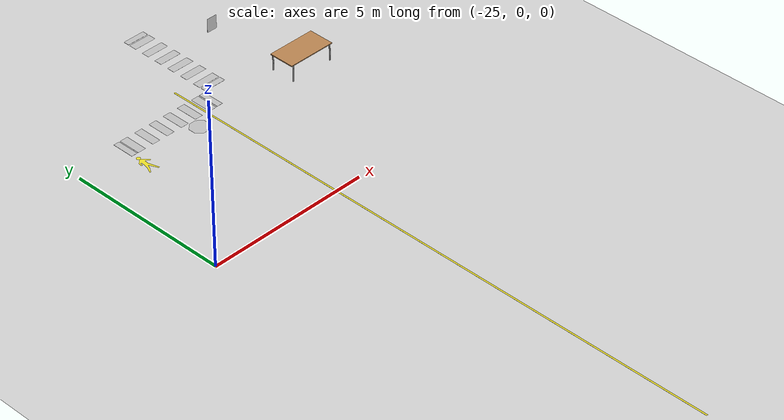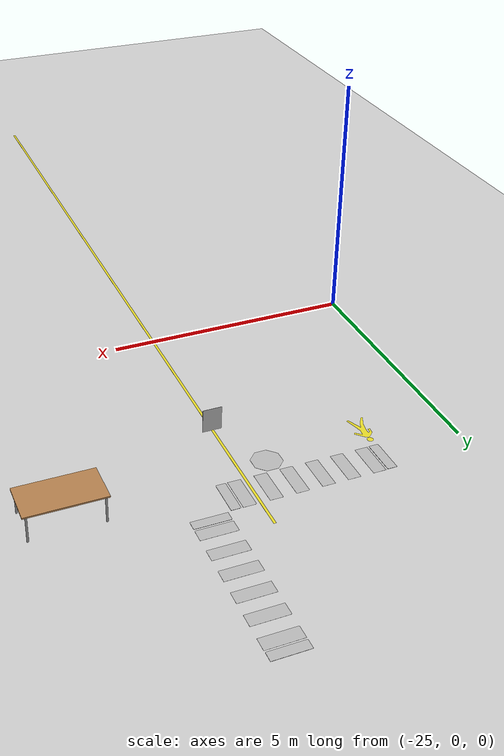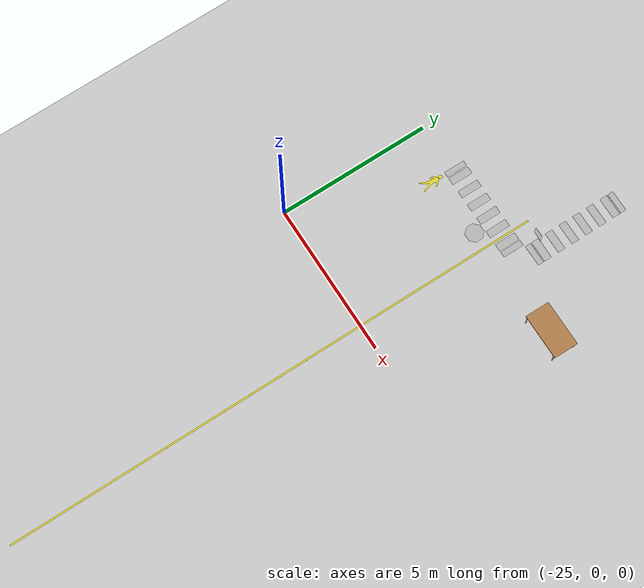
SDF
<sdf version="1.6">
 <world name="default">
  <model name="ground_plane">
   <static>1</static>
   <link name="link">
    <collision name="collision">
     <geometry><plane><normal>0 0 1</normal><size>100 100</size></plane></geometry>
     <surface><friction><ode><mu>100</mu><mu2>50</mu2></ode></friction></surface>
    </collision>
    <visual name="visual">
     <cast_shadows>0</cast_shadows>
     <geometry><plane><normal>0 0 1</normal><size>100 100</size></plane></geometry>
     <material>
      <script><uri>file://media/materials/scripts/gazebo.material</uri><name>Gazebo/Grey</name></script>
     </material>
    </visual>
   </link>
  </model>
  <model name="line18m">
   <link name="link_1">
    <inertial>
     <mass>1</mass>
     <inertia>
      <ixx>0.166667</ixx>
      <ixy>0</ixy>
      <ixz>0</ixz>
      <iyy>0.166667</iyy>
      <iyz>0</iyz>
      <izz>0.166667</izz>
     </inertia>
    </inertial>
    <visual name="visual">
     <geometry><box><size>0.05 18 0.001</size></box></geometry>
     <material>
      <lighting>1</lighting>
      <script><uri>file://media/materials/scripts/gazebo.material</uri><name>Gazebo/Yellow</name></script>
     </material>
    </visual>
   </link>
   <static>1</static>
   <pose>-20.8079 -2.99039 0 0 -0 0</pose>
  </model>
  <model name="crosswalk">
   <link name="link_0">
    <inertial>
     <mass>1</mass>
     <inertia>
      <ixx>0.166667</ixx>
      <ixy>0</ixy>
      <ixz>0</ixz>
      <iyy>0.166667</iyy>
      <iyz>0</iyz>
      <izz>0.166667</izz>
     </inertia>
    </inertial>
    <visual name="visual">
     <pose>0.25 0 0 0 -0 0</pose>
     <geometry><box><size>0.25 0.7 0.001</size></box></geometry>
     <material><lighting>1</lighting></material>
    </visual>
    <visual name="ModelPreview_0::link_0::visual_1">
     <pose>0.75 0 0 0 -0 0</pose>
     <geometry><box><size>0.25 0.7 0.001</size></box></geometry>
     <material><lighting>1</lighting></material>
    </visual>
    <visual name="ModelPreview_0::link_0::visual_2">
     <pose>1.25 0 0 0 -0 0</pose>
     <geometry><box><size>0.25 0.7 0.001</size></box></geometry>
     <material><lighting>1</lighting></material>
    </visual>
    <visual name="ModelPreview_0::link_0::visual_3">
     <pose>-0.25 0 0 0 -0 0</pose>
     <geometry><box><size>0.25 0.7 0.001</size></box></geometry>
     <material><lighting>1</lighting></material>
    </visual>
    <visual name="ModelPreview_0::link_0::visual_4">
     <pose>-0.75 0 0 0 -0 0</pose>
     <geometry><box><size>0.25 0.7 0.001</size></box></geometry>
     <material><lighting>1</lighting></material>
    </visual>
    <visual name="ModelPreview_0::link_0::visual_5">
     <pose>-1.25 0 0 0 -0 0</pose>
     <geometry><box><size>0.25 0.7 0.001</size></box></geometry>
     <material><lighting>1</lighting></material>
    </visual>
    <visual name="ModelPreview_0::link_0::visual_6">
     <pose>-1.6 0.35 0 -1.5708 -0 -1.5708</pose>
     <geometry>
      <mesh><uri>model://crosswalk/model/Warning+sign+confined+space/model.dae</uri><scale>2.35 2 0.9</scale></mesh>
     </geometry>
    </visual>
    <visual name="ModelPreview_0::link_0::visual_7">
     <pose>1.6 -0.35 0 -1.5708 0 1.5708</pose>
     <geometry>
      <mesh><uri>model://crosswalk/model/Warning+sign+confined+space/model.dae</uri><scale>2.35 2 0.9</scale></mesh>
     </geometry>
     <material><lighting>1</lighting></material>
    </visual>
   </link>
   <static>1</static>
   <pose>-21.85 5.10396 0 0 -0 0</pose>
  </model>
  <model name="crosswalk_2">
   <link name="link_0">
    <inertial>
     <mass>1</mass>
     <inertia>
      <ixx>0.166667</ixx>
      <ixy>0</ixy>
      <ixz>0</ixz>
      <iyy>0.166667</iyy>
      <iyz>0</iyz>
      <izz>0.166667</izz>
     </inertia>
    </inertial>
    <visual name="visual">
     <pose>0.25 0 0 0 -0 0</pose>
     <geometry><box><size>0.25 0.7 0.001</size></box></geometry>
     <material><lighting>1</lighting></material>
    </visual>
    <visual name="ModelPreview_0::link_0::visual_1">
     <pose>0.75 0 0 0 -0 0</pose>
     <geometry><box><size>0.25 0.7 0.001</size></box></geometry>
     <material><lighting>1</lighting></material>
    </visual>
    <visual name="ModelPreview_0::link_0::visual_2">
     <pose>1.25 0 0 0 -0 0</pose>
     <geometry><box><size>0.25 0.7 0.001</size></box></geometry>
     <material><lighting>1</lighting></material>
    </visual>
    <visual name="ModelPreview_0::link_0::visual_3">
     <pose>-0.25 0 0 0 -0 0</pose>
     <geometry><box><size>0.25 0.7 0.001</size></box></geometry>
     <material><lighting>1</lighting></material>
    </visual>
    <visual name="ModelPreview_0::link_0::visual_4">
     <pose>-0.75 0 0 0 -0 0</pose>
     <geometry><box><size>0.25 0.7 0.001</size></box></geometry>
     <material><lighting>1</lighting></material>
    </visual>
    <visual name="ModelPreview_0::link_0::visual_5">
     <pose>-1.25 0 0 0 -0 0</pose>
     <geometry><box><size>0.25 0.7 0.001</size></box></geometry>
     <material><lighting>1</lighting></material>
    </visual>
    <visual name="ModelPreview_0::link_0::visual_6">
     <pose>-1.6 0.35 0 -1.5708 -0 -1.5708</pose>
     <geometry>
      <mesh><uri>model://crosswalk/model/Warning+sign+confined+space/model.dae</uri><scale>2.35 2 0.9</scale></mesh>
     </geometry>
    </visual>
    <visual name="ModelPreview_0::link_0::visual_7">
     <pose>1.6 -0.35 0 -1.5708 0 1.5708</pose>
     <geometry>
      <mesh><uri>model://crosswalk/model/Warning+sign+confined+space/model.dae</uri><scale>2.35 2 0.9</scale></mesh>
     </geometry>
     <material><lighting>1</lighting></material>
    </visual>
   </link>
   <static>1</static>
   <pose>-19.84 7.07472 0 0 -0 1.5708</pose>
  </model>
  <model name="stopSign">
   <link name="link_0">
    <inertial>
     <mass>1</mass>
     <inertia><ixx>0.145833</ixx><ixy>0</ixy><ixz>0</ixz><iyy>0.145833</iyy><iyz>0</iyz><izz>0.125</izz></inertia>
    </inertial>
    <visual name="visual">
     <geometry><mesh><uri>model://stopSign/model/model.dae</uri><scale>1 1 0.1</scale></mesh></geometry>
     <material><lighting>1</lighting></material>
    </visual>
   </link>
   <static>1</static>
   <pose>-21.6466 4.16477 0 0 -0 0</pose>
  </model>
  <model name="pedestrianSign">
   <link name="link_0">
    <inertial>
     <mass>1</mass>
     <inertia>
      <ixx>0.166667</ixx>
      <ixy>0</ixy>
      <ixz>0</ixz>
      <iyy>0.166667</iyy>
      <iyz>0</iyz>
      <izz>0.166667</izz>
     </inertia>
    </inertial>
    <visual name="visual">
     <geometry><mesh><uri>model://pedestrianSign/model/model.dae</uri></mesh></geometry>
     <material>
      <lighting>1</lighting>
      <script><uri>file://media/materials/scripts/gazebo.material</uri><name>Gazebo/Yellow</name></script>
     </material>
    </visual>
    <collision name="collision">
     <geometry><box><size>1 0.7 0.001</size></box></geometry>
     <surface>
      <friction>
       <ode><mu>1</mu><mu2>1</mu2><fdir1>0 0 0</fdir1><slip1>0</slip1><slip2>0</slip2></ode>
       <torsional>
        <coefficient>1</coefficient>
        <patch_radius>0</patch_radius>
        <surface_radius>0</surface_radius>
        <use_patch_radius>1</use_patch_radius>
        <ode><slip>0</slip></ode>
       </torsional>
      </friction>
      <bounce><restitution_coefficient>0</restitution_coefficient><threshold>1e+06</threshold></bounce>
      <contact>
       <collide_without_contact>0</collide_without_contact>
       <collide_without_contact_bitmask>1</collide_without_contact_bitmask>
       <collide_bitmask>1</collide_bitmask>
       <ode>
        <soft_cfm>0</soft_cfm>
        <soft_erp>0.2</soft_erp>
        <kp>1e+13</kp>
        <kd>1</kd>
        <max_vel>0.01</max_vel>
        <min_depth>0</min_depth>
       </ode>
       <bullet>
        <split_impulse>1</split_impulse>
        <split_impulse_penetration_threshold>-0.01</split_impulse_penetration_threshold>
        <soft_cfm>0</soft_cfm>
        <soft_erp>0.2</soft_erp>
        <kp>1e+13</kp>
        <kd>1</kd>
       </bullet>
      </contact>
     </surface>
    </collision>
   </link>
   <static>0</static>
   <pose>-23.5856 3.91695 0.0005 0 -0 0</pose>
  </model>
  <model name="table">
   <static>1</static>
   <link name="link">
    <collision name="surface">
     <pose>0 0 1 0 -0 0</pose>
     <geometry><box><size>1.5 0.8 0.03</size></box></geometry>
     <surface><friction><ode><mu>0.6</mu><mu2>0.6</mu2></ode></friction></surface>
    </collision>
    <visual name="visual1">
     <pose>0 0 1 0 -0 0</pose>
     <geometry><box><size>1.5 0.8 0.03</size></box></geometry>
     <material>
      <script><uri>file://media/materials/scripts/gazebo.material</uri><name>Gazebo/Wood</name></script>
     </material>
    </visual>
    <collision name="front_left_leg">
     <pose>0.68 0.38 0.5 0 -0 0</pose>
     <geometry><cylinder><radius>0.02</radius><length>1</length></cylinder></geometry>
    </collision>
    <visual name="front_left_leg">
     <pose>0.68 0.38 0.5 0 -0 0</pose>
     <geometry><cylinder><radius>0.02</radius><length>1</length></cylinder></geometry>
     <material>
      <script><uri>file://media/materials/scripts/gazebo.material</uri><name>Gazebo/Grey</name></script>
     </material>
    </visual>
    <collision name="front_right_leg">
     <pose>0.68 -0.38 0.5 0 -0 0</pose>
     <geometry><cylinder><radius>0.02</radius><length>1</length></cylinder></geometry>
    </collision>
    <visual name="front_right_leg">
     <pose>0.68 -0.38 0.5 0 -0 0</pose>
     <geometry><cylinder><radius>0.02</radius><length>1</length></cylinder></geometry>
     <material>
      <script><uri>file://media/materials/scripts/gazebo.material</uri><name>Gazebo/Grey</name></script>
     </material>
    </visual>
    <collision name="back_right_leg">
     <pose>-0.68 -0.38 0.5 0 -0 0</pose>
     <geometry><cylinder><radius>0.02</radius><length>1</length></cylinder></geometry>
    </collision>
    <visual name="back_right_leg">
     <pose>-0.68 -0.38 0.5 0 -0 0</pose>
     <geometry><cylinder><radius>0.02</radius><length>1</length></cylinder></geometry>
     <material>
      <script><uri>file://media/materials/scripts/gazebo.material</uri><name>Gazebo/Grey</name></script>
     </material>
    </visual>
    <collision name="back_left_leg">
     <pose>-0.68 0.38 0.5 0 -0 0</pose>
     <geometry><cylinder><radius>0.02</radius><length>1</length></cylinder></geometry>
    </collision>
    <visual name="back_left_leg">
     <pose>-0.68 0.38 0.5 0 -0 0</pose>
     <geometry><cylinder><radius>0.02</radius><length>1</length></cylinder></geometry>
     <material>
      <script><uri>file://media/materials/scripts/gazebo.material</uri><name>Gazebo/Grey</name></script>
     </material>
    </visual>
   </link>
   <pose>-17.5582 4.54 -0.5 0 -0 0</pose>
  </model>
  <model name="40x30sign_1">
   <link name="link_0">
    <inertial>
     <mass>1</mass>
     <inertia>
      <ixx>0.166667</ixx>
      <ixy>0</ixy>
      <ixz>0</ixz>
      <iyy>0.166667</iyy>
      <iyz>0</iyz>
      <izz>0.166667</izz>
     </inertia>
    </inertial>
    <visual name="visual">
     <pose>-0.15 0 -0.2 0 -0 0</pose>
     <geometry><mesh><uri>model://40x30sign_1/model/model.dae</uri><scale>1.1 1 2</scale></mesh></geometry>
     <material><lighting>1</lighting></material>
    </visual>
    <collision name="collision">
     <geometry><box><size>0.3 0.005 0.4</size></box></geometry>
     <surface>
      <friction>
       <ode><mu>1</mu><mu2>1</mu2><fdir1>0 0 0</fdir1><slip1>0</slip1><slip2>0</slip2></ode>
       <torsional>
        <coefficient>1</coefficient>
        <patch_radius>0</patch_radius>
        <surface_radius>0</surface_radius>
        <use_patch_radius>1</use_patch_radius>
        <ode><slip>0</slip></ode>
       </torsional>
      </friction>
      <bounce><restitution_coefficient>0</restitution_coefficient><threshold>1e+06</threshold></bounce>
      <contact>
       <collide_without_contact>0</collide_without_contact>
       <collide_without_contact_bitmask>1</collide_without_contact_bitmask>
       <collide_bitmask>1</collide_bitmask>
       <ode>
        <soft_cfm>0</soft_cfm>
        <soft_erp>0.2</soft_erp>
        <kp>1e+13</kp>
        <kd>1</kd>
        <max_vel>0.01</max_vel>
        <min_depth>0</min_depth>
       </ode>
       <bullet>
        <split_impulse>1</split_impulse>
        <split_impulse_penetration_threshold>-0.01</split_impulse_penetration_threshold>
        <soft_cfm>0</soft_cfm>
        <soft_erp>0.2</soft_erp>
        <kp>1e+13</kp>
        <kd>1</kd>
       </bullet>
      </contact>
     </surface>
    </collision>
   </link>
   <static>1</static>
   <pose>-19.8676 5.46703 2 0 0 -3.14159</pose>
  </model>
 </world>
</sdf>
